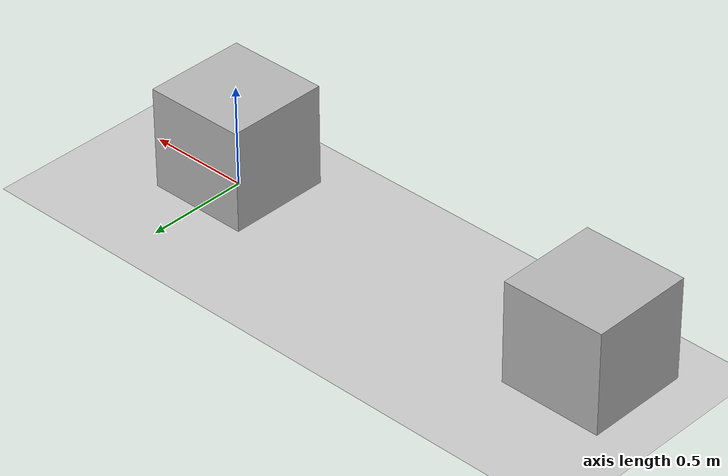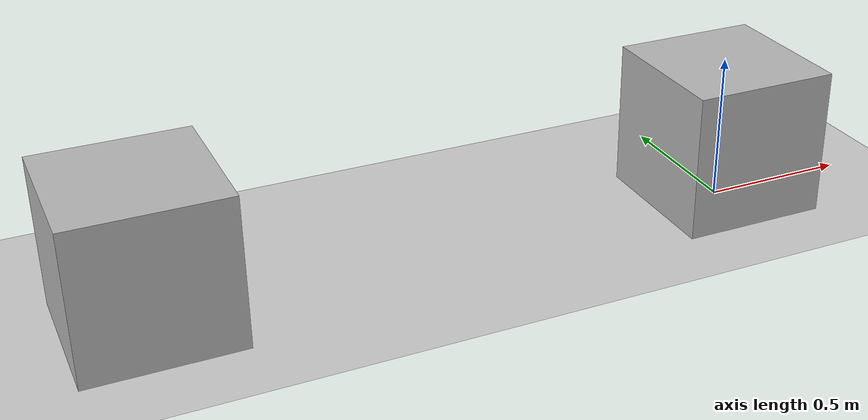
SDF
<?xml version="1.0" ?>
<sdf version="1.4">
  <world name="default">
    <include>
      <uri>model://ground_plane</uri>
    </include>

    <include>
      <uri>model://sun</uri>
    </include>

    <model name ='blockA'>
      <pose>-2 0 0.25 0 0 0</pose>
      <link name ='blockA'>
        <pose>0 0 0 0 0 0</pose>
        <surface>
          <friction>
            <ode>
              <mu>0.7</mu>
            </ode>
          </friction>
        </surface>
        <collision name ='collision'>
          <laser_retro>255</laser_retro>
          <geometry>
            <box><size>0.5 0.5 0.5</size></box>
          </geometry>
        </collision>
        <inertial name ='inertial'>
          <mass>2</mass>
        </inertial>
        <visual name ='visual'>
          <geometry>
            <box><size>0.5 0.5 0.5</size></box>
          </geometry>
        </visual>
      </link>

    <model name ='blockB'>
      <pose>2 0 0 0 0 0</pose>
      <link name ='blockB'>
        <pose>0 0 0 0 0 0</pose>
        <surface>
          <friction>
            <ode>
              <mu>0.1</mu>
            </ode>
          </friction>
        </surface>
        <collision name ='collision'>
          <laser_retro>255</laser_retro>
          <geometry>
            <box><size>0.5 0.5 0.5</size></box>
          </geometry>
        </collision>
        <inertial name ='inertial'>
          <mass>2</mass>
        </inertial>
        <visual name ='visual'>
          <geometry>
            <box><size>0.5 0.5 0.5</size></box>
          </geometry>
        </visual>
      </link>
    </model>

    <joint name="prismatic_joint" type="prismatic">
      <parent>blockA</parent>
      <child>blockB::blockB</child>
      <pose>0.0 0.0 0.0 0.0 0.0 0.0</pose>
      <axis>
        <xyz>1.0 0.0 0.0</xyz>
      </axis>
    </joint>

    </model>
  </world>
</sdf>
